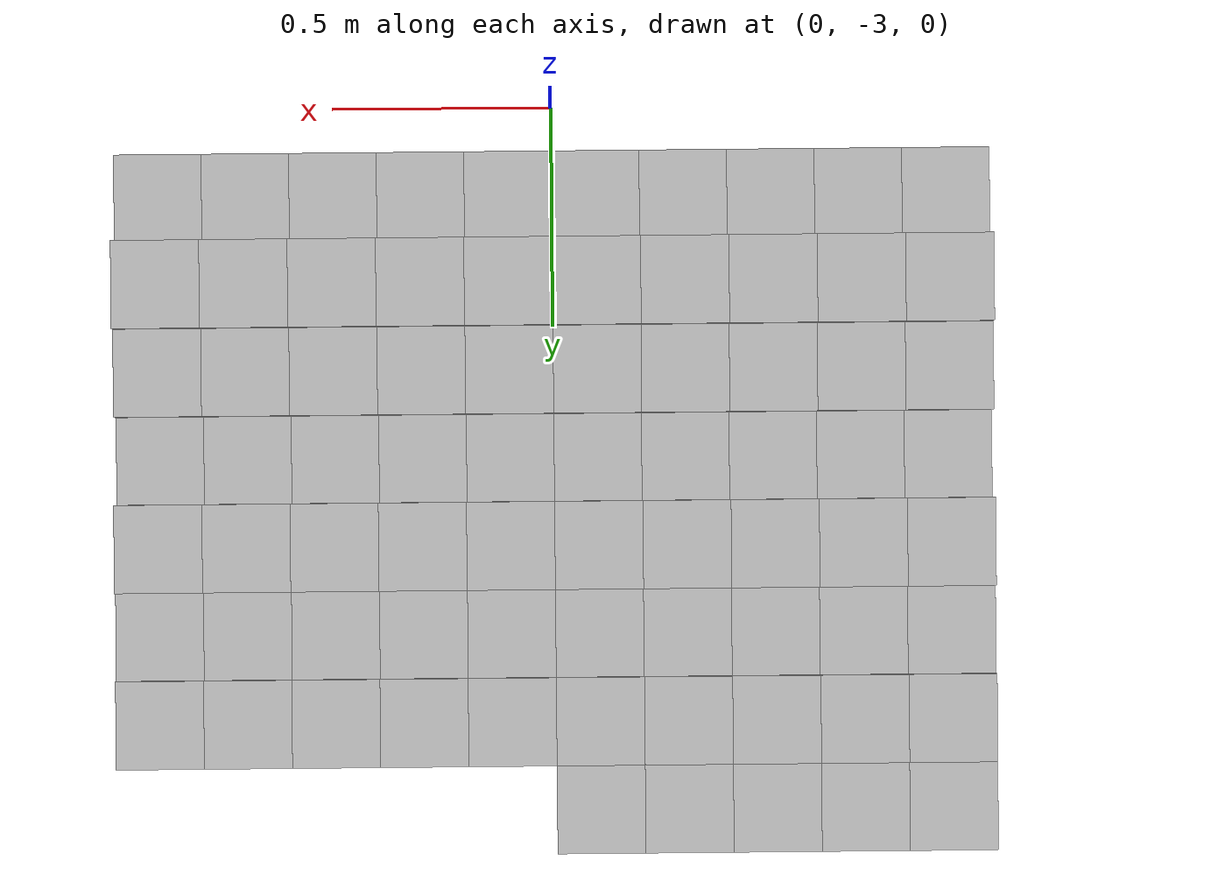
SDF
<sdf version="1.6">
 <model name="Terrain">
  <static>true</static>
  <link name="box_7_0">
   <pose>-0.9 -1.4 0.0434857644418 0 0 0</pose>
   <inertial>
    <mass>1.0</mass>
    <inertia><ixx>0.0</ixx><ixy>0.0</ixy><ixz>0.0</ixz><iyy>0.0</iyy><iyz>0.0</iyz><izz>0.0</izz></inertia>
   </inertial>
   <collision name="collision"><geometry><box><size>0.2 0.2 0.0869715288836</size></box></geometry></collision>
   <visual name="visual"><geometry><box><size>0.2 0.2 0.0869715288836</size></box></geometry></visual>
  </link>
  <link name="box_7_1">
   <pose>-0.7 -1.4 0.0434857644418 0 0 0</pose>
   <inertial>
    <mass>1.0</mass>
    <inertia><ixx>0.0</ixx><ixy>0.0</ixy><ixz>0.0</ixz><iyy>0.0</iyy><iyz>0.0</iyz><izz>0.0</izz></inertia>
   </inertial>
   <collision name="collision"><geometry><box><size>0.2 0.2 0.0869715288836</size></box></geometry></collision>
   <visual name="visual"><geometry><box><size>0.2 0.2 0.0869715288836</size></box></geometry></visual>
  </link>
  <link name="box_7_2">
   <pose>-0.5 -1.4 0.0434857644418 0 0 0</pose>
   <inertial>
    <mass>1.0</mass>
    <inertia><ixx>0.0</ixx><ixy>0.0</ixy><ixz>0.0</ixz><iyy>0.0</iyy><iyz>0.0</iyz><izz>0.0</izz></inertia>
   </inertial>
   <collision name="collision"><geometry><box><size>0.2 0.2 0.0869715288836</size></box></geometry></collision>
   <visual name="visual"><geometry><box><size>0.2 0.2 0.0869715288836</size></box></geometry></visual>
  </link>
  <link name="box_7_3">
   <pose>-0.3 -1.4 0.0434857644418 0 0 0</pose>
   <inertial>
    <mass>1.0</mass>
    <inertia><ixx>0.0</ixx><ixy>0.0</ixy><ixz>0.0</ixz><iyy>0.0</iyy><iyz>0.0</iyz><izz>0.0</izz></inertia>
   </inertial>
   <collision name="collision"><geometry><box><size>0.2 0.2 0.0869715288836</size></box></geometry></collision>
   <visual name="visual"><geometry><box><size>0.2 0.2 0.0869715288836</size></box></geometry></visual>
  </link>
  <link name="box_7_4">
   <pose>-0.1 -1.4 0.0434857644418 0 0 0</pose>
   <inertial>
    <mass>1.0</mass>
    <inertia><ixx>0.0</ixx><ixy>0.0</ixy><ixz>0.0</ixz><iyy>0.0</iyy><iyz>0.0</iyz><izz>0.0</izz></inertia>
   </inertial>
   <collision name="collision"><geometry><box><size>0.2 0.2 0.0869715288836</size></box></geometry></collision>
   <visual name="visual"><geometry><box><size>0.2 0.2 0.0869715288836</size></box></geometry></visual>
  </link>
  <link name="box_8_0">
   <pose>-0.9 -1.6 0.0460421449949 0 0 0</pose>
   <inertial>
    <mass>1.0</mass>
    <inertia><ixx>0.0</ixx><ixy>0.0</ixy><ixz>0.0</ixz><iyy>0.0</iyy><iyz>0.0</iyz><izz>0.0</izz></inertia>
   </inertial>
   <collision name="collision"><geometry><box><size>0.2 0.2 0.0920842899899</size></box></geometry></collision>
   <visual name="visual"><geometry><box><size>0.2 0.2 0.0920842899899</size></box></geometry></visual>
  </link>
  <link name="box_8_1">
   <pose>-0.7 -1.6 0.0460421449949 0 0 0</pose>
   <inertial>
    <mass>1.0</mass>
    <inertia><ixx>0.0</ixx><ixy>0.0</ixy><ixz>0.0</ixz><iyy>0.0</iyy><iyz>0.0</iyz><izz>0.0</izz></inertia>
   </inertial>
   <collision name="collision"><geometry><box><size>0.2 0.2 0.0920842899899</size></box></geometry></collision>
   <visual name="visual"><geometry><box><size>0.2 0.2 0.0920842899899</size></box></geometry></visual>
  </link>
  <link name="box_8_2">
   <pose>-0.5 -1.6 0.0460421449949 0 0 0</pose>
   <inertial>
    <mass>1.0</mass>
    <inertia><ixx>0.0</ixx><ixy>0.0</ixy><ixz>0.0</ixz><iyy>0.0</iyy><iyz>0.0</iyz><izz>0.0</izz></inertia>
   </inertial>
   <collision name="collision"><geometry><box><size>0.2 0.2 0.0920842899899</size></box></geometry></collision>
   <visual name="visual"><geometry><box><size>0.2 0.2 0.0920842899899</size></box></geometry></visual>
  </link>
  <link name="box_8_3">
   <pose>-0.3 -1.6 0.0460421449949 0 0 0</pose>
   <inertial>
    <mass>1.0</mass>
    <inertia><ixx>0.0</ixx><ixy>0.0</ixy><ixz>0.0</ixz><iyy>0.0</iyy><iyz>0.0</iyz><izz>0.0</izz></inertia>
   </inertial>
   <collision name="collision"><geometry><box><size>0.2 0.2 0.0920842899899</size></box></geometry></collision>
   <visual name="visual"><geometry><box><size>0.2 0.2 0.0920842899899</size></box></geometry></visual>
  </link>
  <link name="box_8_4">
   <pose>-0.1 -1.6 0.0460421449949 0 0 0</pose>
   <inertial>
    <mass>1.0</mass>
    <inertia><ixx>0.0</ixx><ixy>0.0</ixy><ixz>0.0</ixz><iyy>0.0</iyy><iyz>0.0</iyz><izz>0.0</izz></inertia>
   </inertial>
   <collision name="collision"><geometry><box><size>0.2 0.2 0.0920842899899</size></box></geometry></collision>
   <visual name="visual"><geometry><box><size>0.2 0.2 0.0920842899899</size></box></geometry></visual>
  </link>
  <link name="box_8_5">
   <pose>0.1 -1.6 0.0460421449949 0 0 0</pose>
   <inertial>
    <mass>1.0</mass>
    <inertia><ixx>0.0</ixx><ixy>0.0</ixy><ixz>0.0</ixz><iyy>0.0</iyy><iyz>0.0</iyz><izz>0.0</izz></inertia>
   </inertial>
   <collision name="collision"><geometry><box><size>0.2 0.2 0.0920842899899</size></box></geometry></collision>
   <visual name="visual"><geometry><box><size>0.2 0.2 0.0920842899899</size></box></geometry></visual>
  </link>
  <link name="box_8_6">
   <pose>0.3 -1.6 0.0460421449949 0 0 0</pose>
   <inertial>
    <mass>1.0</mass>
    <inertia><ixx>0.0</ixx><ixy>0.0</ixy><ixz>0.0</ixz><iyy>0.0</iyy><iyz>0.0</iyz><izz>0.0</izz></inertia>
   </inertial>
   <collision name="collision"><geometry><box><size>0.2 0.2 0.0920842899899</size></box></geometry></collision>
   <visual name="visual"><geometry><box><size>0.2 0.2 0.0920842899899</size></box></geometry></visual>
  </link>
  <link name="box_8_7">
   <pose>0.5 -1.6 0.0460421449949 0 0 0</pose>
   <inertial>
    <mass>1.0</mass>
    <inertia><ixx>0.0</ixx><ixy>0.0</ixy><ixz>0.0</ixz><iyy>0.0</iyy><iyz>0.0</iyz><izz>0.0</izz></inertia>
   </inertial>
   <collision name="collision"><geometry><box><size>0.2 0.2 0.0920842899899</size></box></geometry></collision>
   <visual name="visual"><geometry><box><size>0.2 0.2 0.0920842899899</size></box></geometry></visual>
  </link>
  <link name="box_8_8">
   <pose>0.7 -1.6 0.0460421449949 0 0 0</pose>
   <inertial>
    <mass>1.0</mass>
    <inertia><ixx>0.0</ixx><ixy>0.0</ixy><ixz>0.0</ixz><iyy>0.0</iyy><iyz>0.0</iyz><izz>0.0</izz></inertia>
   </inertial>
   <collision name="collision"><geometry><box><size>0.2 0.2 0.0920842899899</size></box></geometry></collision>
   <visual name="visual"><geometry><box><size>0.2 0.2 0.0920842899899</size></box></geometry></visual>
  </link>
  <link name="box_8_9">
   <pose>0.9 -1.6 0.0460421449949 0 0 0</pose>
   <inertial>
    <mass>1.0</mass>
    <inertia><ixx>0.0</ixx><ixy>0.0</ixy><ixz>0.0</ixz><iyy>0.0</iyy><iyz>0.0</iyz><izz>0.0</izz></inertia>
   </inertial>
   <collision name="collision"><geometry><box><size>0.2 0.2 0.0920842899899</size></box></geometry></collision>
   <visual name="visual"><geometry><box><size>0.2 0.2 0.0920842899899</size></box></geometry></visual>
  </link>
  <link name="box_9_0">
   <pose>-0.9 -1.8 0.0365737514158 0 0 0</pose>
   <inertial>
    <mass>1.0</mass>
    <inertia><ixx>0.0</ixx><ixy>0.0</ixy><ixz>0.0</ixz><iyy>0.0</iyy><iyz>0.0</iyz><izz>0.0</izz></inertia>
   </inertial>
   <collision name="collision"><geometry><box><size>0.2 0.2 0.0731475028316</size></box></geometry></collision>
   <visual name="visual"><geometry><box><size>0.2 0.2 0.0731475028316</size></box></geometry></visual>
  </link>
  <link name="box_9_1">
   <pose>-0.7 -1.8 0.0365737514158 0 0 0</pose>
   <inertial>
    <mass>1.0</mass>
    <inertia><ixx>0.0</ixx><ixy>0.0</ixy><ixz>0.0</ixz><iyy>0.0</iyy><iyz>0.0</iyz><izz>0.0</izz></inertia>
   </inertial>
   <collision name="collision"><geometry><box><size>0.2 0.2 0.0731475028316</size></box></geometry></collision>
   <visual name="visual"><geometry><box><size>0.2 0.2 0.0731475028316</size></box></geometry></visual>
  </link>
  <link name="box_9_2">
   <pose>-0.5 -1.8 0.0365737514158 0 0 0</pose>
   <inertial>
    <mass>1.0</mass>
    <inertia><ixx>0.0</ixx><ixy>0.0</ixy><ixz>0.0</ixz><iyy>0.0</iyy><iyz>0.0</iyz><izz>0.0</izz></inertia>
   </inertial>
   <collision name="collision"><geometry><box><size>0.2 0.2 0.0731475028316</size></box></geometry></collision>
   <visual name="visual"><geometry><box><size>0.2 0.2 0.0731475028316</size></box></geometry></visual>
  </link>
  <link name="box_9_3">
   <pose>-0.3 -1.8 0.0365737514158 0 0 0</pose>
   <inertial>
    <mass>1.0</mass>
    <inertia><ixx>0.0</ixx><ixy>0.0</ixy><ixz>0.0</ixz><iyy>0.0</iyy><iyz>0.0</iyz><izz>0.0</izz></inertia>
   </inertial>
   <collision name="collision"><geometry><box><size>0.2 0.2 0.0731475028316</size></box></geometry></collision>
   <visual name="visual"><geometry><box><size>0.2 0.2 0.0731475028316</size></box></geometry></visual>
  </link>
  <link name="box_9_4">
   <pose>-0.1 -1.8 0.0365737514158 0 0 0</pose>
   <inertial>
    <mass>1.0</mass>
    <inertia><ixx>0.0</ixx><ixy>0.0</ixy><ixz>0.0</ixz><iyy>0.0</iyy><iyz>0.0</iyz><izz>0.0</izz></inertia>
   </inertial>
   <collision name="collision"><geometry><box><size>0.2 0.2 0.0731475028316</size></box></geometry></collision>
   <visual name="visual"><geometry><box><size>0.2 0.2 0.0731475028316</size></box></geometry></visual>
  </link>
  <link name="box_9_5">
   <pose>0.1 -1.8 0.0365737514158 0 0 0</pose>
   <inertial>
    <mass>1.0</mass>
    <inertia><ixx>0.0</ixx><ixy>0.0</ixy><ixz>0.0</ixz><iyy>0.0</iyy><iyz>0.0</iyz><izz>0.0</izz></inertia>
   </inertial>
   <collision name="collision"><geometry><box><size>0.2 0.2 0.0731475028316</size></box></geometry></collision>
   <visual name="visual"><geometry><box><size>0.2 0.2 0.0731475028316</size></box></geometry></visual>
  </link>
  <link name="box_9_6">
   <pose>0.3 -1.8 0.0365737514158 0 0 0</pose>
   <inertial>
    <mass>1.0</mass>
    <inertia><ixx>0.0</ixx><ixy>0.0</ixy><ixz>0.0</ixz><iyy>0.0</iyy><iyz>0.0</iyz><izz>0.0</izz></inertia>
   </inertial>
   <collision name="collision"><geometry><box><size>0.2 0.2 0.0731475028316</size></box></geometry></collision>
   <visual name="visual"><geometry><box><size>0.2 0.2 0.0731475028316</size></box></geometry></visual>
  </link>
  <link name="box_9_7">
   <pose>0.5 -1.8 0.0365737514158 0 0 0</pose>
   <inertial>
    <mass>1.0</mass>
    <inertia><ixx>0.0</ixx><ixy>0.0</ixy><ixz>0.0</ixz><iyy>0.0</iyy><iyz>0.0</iyz><izz>0.0</izz></inertia>
   </inertial>
   <collision name="collision"><geometry><box><size>0.2 0.2 0.0731475028316</size></box></geometry></collision>
   <visual name="visual"><geometry><box><size>0.2 0.2 0.0731475028316</size></box></geometry></visual>
  </link>
  <link name="box_9_8">
   <pose>0.7 -1.8 0.0365737514158 0 0 0</pose>
   <inertial>
    <mass>1.0</mass>
    <inertia><ixx>0.0</ixx><ixy>0.0</ixy><ixz>0.0</ixz><iyy>0.0</iyy><iyz>0.0</iyz><izz>0.0</izz></inertia>
   </inertial>
   <collision name="collision"><geometry><box><size>0.2 0.2 0.0731475028316</size></box></geometry></collision>
   <visual name="visual"><geometry><box><size>0.2 0.2 0.0731475028316</size></box></geometry></visual>
  </link>
  <link name="box_9_9">
   <pose>0.9 -1.8 0.0365737514158 0 0 0</pose>
   <inertial>
    <mass>1.0</mass>
    <inertia><ixx>0.0</ixx><ixy>0.0</ixy><ixz>0.0</ixz><iyy>0.0</iyy><iyz>0.0</iyz><izz>0.0</izz></inertia>
   </inertial>
   <collision name="collision"><geometry><box><size>0.2 0.2 0.0731475028316</size></box></geometry></collision>
   <visual name="visual"><geometry><box><size>0.2 0.2 0.0731475028316</size></box></geometry></visual>
  </link>
  <link name="box_10_0">
   <pose>-0.9 -2.0 0.0476696976507 0 0 0</pose>
   <inertial>
    <mass>1.0</mass>
    <inertia><ixx>0.0</ixx><ixy>0.0</ixy><ixz>0.0</ixz><iyy>0.0</iyy><iyz>0.0</iyz><izz>0.0</izz></inertia>
   </inertial>
   <collision name="collision"><geometry><box><size>0.2 0.2 0.0953393953015</size></box></geometry></collision>
   <visual name="visual"><geometry><box><size>0.2 0.2 0.0953393953015</size></box></geometry></visual>
  </link>
  <link name="box_10_1">
   <pose>-0.7 -2.0 0.0476696976507 0 0 0</pose>
   <inertial>
    <mass>1.0</mass>
    <inertia><ixx>0.0</ixx><ixy>0.0</ixy><ixz>0.0</ixz><iyy>0.0</iyy><iyz>0.0</iyz><izz>0.0</izz></inertia>
   </inertial>
   <collision name="collision"><geometry><box><size>0.2 0.2 0.0953393953015</size></box></geometry></collision>
   <visual name="visual"><geometry><box><size>0.2 0.2 0.0953393953015</size></box></geometry></visual>
  </link>
  <link name="box_10_2">
   <pose>-0.5 -2.0 0.0476696976507 0 0 0</pose>
   <inertial>
    <mass>1.0</mass>
    <inertia><ixx>0.0</ixx><ixy>0.0</ixy><ixz>0.0</ixz><iyy>0.0</iyy><iyz>0.0</iyz><izz>0.0</izz></inertia>
   </inertial>
   <collision name="collision"><geometry><box><size>0.2 0.2 0.0953393953015</size></box></geometry></collision>
   <visual name="visual"><geometry><box><size>0.2 0.2 0.0953393953015</size></box></geometry></visual>
  </link>
  <link name="box_10_3">
   <pose>-0.3 -2.0 0.0476696976507 0 0 0</pose>
   <inertial>
    <mass>1.0</mass>
    <inertia><ixx>0.0</ixx><ixy>0.0</ixy><ixz>0.0</ixz><iyy>0.0</iyy><iyz>0.0</iyz><izz>0.0</izz></inertia>
   </inertial>
   <collision name="collision"><geometry><box><size>0.2 0.2 0.0953393953015</size></box></geometry></collision>
   <visual name="visual"><geometry><box><size>0.2 0.2 0.0953393953015</size></box></geometry></visual>
  </link>
  <link name="box_10_4">
   <pose>-0.1 -2.0 0.0476696976507 0 0 0</pose>
   <inertial>
    <mass>1.0</mass>
    <inertia><ixx>0.0</ixx><ixy>0.0</ixy><ixz>0.0</ixz><iyy>0.0</iyy><iyz>0.0</iyz><izz>0.0</izz></inertia>
   </inertial>
   <collision name="collision"><geometry><box><size>0.2 0.2 0.0953393953015</size></box></geometry></collision>
   <visual name="visual"><geometry><box><size>0.2 0.2 0.0953393953015</size></box></geometry></visual>
  </link>
  <link name="box_10_5">
   <pose>0.1 -2.0 0.0476696976507 0 0 0</pose>
   <inertial>
    <mass>1.0</mass>
    <inertia><ixx>0.0</ixx><ixy>0.0</ixy><ixz>0.0</ixz><iyy>0.0</iyy><iyz>0.0</iyz><izz>0.0</izz></inertia>
   </inertial>
   <collision name="collision"><geometry><box><size>0.2 0.2 0.0953393953015</size></box></geometry></collision>
   <visual name="visual"><geometry><box><size>0.2 0.2 0.0953393953015</size></box></geometry></visual>
  </link>
  <link name="box_10_6">
   <pose>0.3 -2.0 0.0476696976507 0 0 0</pose>
   <inertial>
    <mass>1.0</mass>
    <inertia><ixx>0.0</ixx><ixy>0.0</ixy><ixz>0.0</ixz><iyy>0.0</iyy><iyz>0.0</iyz><izz>0.0</izz></inertia>
   </inertial>
   <collision name="collision"><geometry><box><size>0.2 0.2 0.0953393953015</size></box></geometry></collision>
   <visual name="visual"><geometry><box><size>0.2 0.2 0.0953393953015</size></box></geometry></visual>
  </link>
  <link name="box_10_7">
   <pose>0.5 -2.0 0.0476696976507 0 0 0</pose>
   <inertial>
    <mass>1.0</mass>
    <inertia><ixx>0.0</ixx><ixy>0.0</ixy><ixz>0.0</ixz><iyy>0.0</iyy><iyz>0.0</iyz><izz>0.0</izz></inertia>
   </inertial>
   <collision name="collision"><geometry><box><size>0.2 0.2 0.0953393953015</size></box></geometry></collision>
   <visual name="visual"><geometry><box><size>0.2 0.2 0.0953393953015</size></box></geometry></visual>
  </link>
  <link name="box_10_8">
   <pose>0.7 -2.0 0.0476696976507 0 0 0</pose>
   <inertial>
    <mass>1.0</mass>
    <inertia><ixx>0.0</ixx><ixy>0.0</ixy><ixz>0.0</ixz><iyy>0.0</iyy><iyz>0.0</iyz><izz>0.0</izz></inertia>
   </inertial>
   <collision name="collision"><geometry><box><size>0.2 0.2 0.0953393953015</size></box></geometry></collision>
   <visual name="visual"><geometry><box><size>0.2 0.2 0.0953393953015</size></box></geometry></visual>
  </link>
  <link name="box_10_9">
   <pose>0.9 -2.0 0.0476696976507 0 0 0</pose>
   <inertial>
    <mass>1.0</mass>
    <inertia><ixx>0.0</ixx><ixy>0.0</ixy><ixz>0.0</ixz><iyy>0.0</iyy><iyz>0.0</iyz><izz>0.0</izz></inertia>
   </inertial>
   <collision name="collision"><geometry><box><size>0.2 0.2 0.0953393953015</size></box></geometry></collision>
   <visual name="visual"><geometry><box><size>0.2 0.2 0.0953393953015</size></box></geometry></visual>
  </link>
  <link name="box_11_0">
   <pose>-0.9 -2.2 0.0134840119903 0 0 0</pose>
   <inertial>
    <mass>1.0</mass>
    <inertia><ixx>0.0</ixx><ixy>0.0</ixy><ixz>0.0</ixz><iyy>0.0</iyy><iyz>0.0</iyz><izz>0.0</izz></inertia>
   </inertial>
   <collision name="collision"><geometry><box><size>0.2 0.2 0.0269680239807</size></box></geometry></collision>
   <visual name="visual"><geometry><box><size>0.2 0.2 0.0269680239807</size></box></geometry></visual>
  </link>
  <link name="box_11_1">
   <pose>-0.7 -2.2 0.0134840119903 0 0 0</pose>
   <inertial>
    <mass>1.0</mass>
    <inertia><ixx>0.0</ixx><ixy>0.0</ixy><ixz>0.0</ixz><iyy>0.0</iyy><iyz>0.0</iyz><izz>0.0</izz></inertia>
   </inertial>
   <collision name="collision"><geometry><box><size>0.2 0.2 0.0269680239807</size></box></geometry></collision>
   <visual name="visual"><geometry><box><size>0.2 0.2 0.0269680239807</size></box></geometry></visual>
  </link>
  <link name="box_11_2">
   <pose>-0.5 -2.2 0.0134840119903 0 0 0</pose>
   <inertial>
    <mass>1.0</mass>
    <inertia><ixx>0.0</ixx><ixy>0.0</ixy><ixz>0.0</ixz><iyy>0.0</iyy><iyz>0.0</iyz><izz>0.0</izz></inertia>
   </inertial>
   <collision name="collision"><geometry><box><size>0.2 0.2 0.0269680239807</size></box></geometry></collision>
   <visual name="visual"><geometry><box><size>0.2 0.2 0.0269680239807</size></box></geometry></visual>
  </link>
  <link name="box_11_3">
   <pose>-0.3 -2.2 0.0134840119903 0 0 0</pose>
   <inertial>
    <mass>1.0</mass>
    <inertia><ixx>0.0</ixx><ixy>0.0</ixy><ixz>0.0</ixz><iyy>0.0</iyy><iyz>0.0</iyz><izz>0.0</izz></inertia>
   </inertial>
   <collision name="collision"><geometry><box><size>0.2 0.2 0.0269680239807</size></box></geometry></collision>
   <visual name="visual"><geometry><box><size>0.2 0.2 0.0269680239807</size></box></geometry></visual>
  </link>
  <link name="box_11_4">
   <pose>-0.1 -2.2 0.0134840119903 0 0 0</pose>
   <inertial>
    <mass>1.0</mass>
    <inertia><ixx>0.0</ixx><ixy>0.0</ixy><ixz>0.0</ixz><iyy>0.0</iyy><iyz>0.0</iyz><izz>0.0</izz></inertia>
   </inertial>
   <collision name="collision"><geometry><box><size>0.2 0.2 0.0269680239807</size></box></geometry></collision>
   <visual name="visual"><geometry><box><size>0.2 0.2 0.0269680239807</size></box></geometry></visual>
  </link>
  <link name="box_11_5">
   <pose>0.1 -2.2 0.0134840119903 0 0 0</pose>
   <inertial>
    <mass>1.0</mass>
    <inertia><ixx>0.0</ixx><ixy>0.0</ixy><ixz>0.0</ixz><iyy>0.0</iyy><iyz>0.0</iyz><izz>0.0</izz></inertia>
   </inertial>
   <collision name="collision"><geometry><box><size>0.2 0.2 0.0269680239807</size></box></geometry></collision>
   <visual name="visual"><geometry><box><size>0.2 0.2 0.0269680239807</size></box></geometry></visual>
  </link>
  <link name="box_11_6">
   <pose>0.3 -2.2 0.0134840119903 0 0 0</pose>
   <inertial>
    <mass>1.0</mass>
    <inertia><ixx>0.0</ixx><ixy>0.0</ixy><ixz>0.0</ixz><iyy>0.0</iyy><iyz>0.0</iyz><izz>0.0</izz></inertia>
   </inertial>
   <collision name="collision"><geometry><box><size>0.2 0.2 0.0269680239807</size></box></geometry></collision>
   <visual name="visual"><geometry><box><size>0.2 0.2 0.0269680239807</size></box></geometry></visual>
  </link>
  <link name="box_11_7">
   <pose>0.5 -2.2 0.0134840119903 0 0 0</pose>
   <inertial>
    <mass>1.0</mass>
    <inertia><ixx>0.0</ixx><ixy>0.0</ixy><ixz>0.0</ixz><iyy>0.0</iyy><iyz>0.0</iyz><izz>0.0</izz></inertia>
   </inertial>
   <collision name="collision"><geometry><box><size>0.2 0.2 0.0269680239807</size></box></geometry></collision>
   <visual name="visual"><geometry><box><size>0.2 0.2 0.0269680239807</size></box></geometry></visual>
  </link>
  <link name="box_11_8">
   <pose>0.7 -2.2 0.0134840119903 0 0 0</pose>
   <inertial>
    <mass>1.0</mass>
    <inertia><ixx>0.0</ixx><ixy>0.0</ixy><ixz>0.0</ixz><iyy>0.0</iyy><iyz>0.0</iyz><izz>0.0</izz></inertia>
   </inertial>
   <collision name="collision"><geometry><box><size>0.2 0.2 0.0269680239807</size></box></geometry></collision>
   <visual name="visual"><geometry><box><size>0.2 0.2 0.0269680239807</size></box></geometry></visual>
  </link>
  <link name="box_11_9">
   <pose>0.9 -2.2 0.0134840119903 0 0 0</pose>
   <inertial>
    <mass>1.0</mass>
    <inertia><ixx>0.0</ixx><ixy>0.0</ixy><ixz>0.0</ixz><iyy>0.0</iyy><iyz>0.0</iyz><izz>0.0</izz></inertia>
   </inertial>
   <collision name="collision"><geometry><box><size>0.2 0.2 0.0269680239807</size></box></geometry></collision>
   <visual name="visual"><geometry><box><size>0.2 0.2 0.0269680239807</size></box></geometry></visual>
  </link>
  <link name="box_12_0">
   <pose>-0.9 -2.4 0.0400465403266 0 0 0</pose>
   <inertial>
    <mass>1.0</mass>
    <inertia><ixx>0.0</ixx><ixy>0.0</ixy><ixz>0.0</ixz><iyy>0.0</iyy><iyz>0.0</iyz><izz>0.0</izz></inertia>
   </inertial>
   <collision name="collision"><geometry><box><size>0.2 0.2 0.0800930806532</size></box></geometry></collision>
   <visual name="visual"><geometry><box><size>0.2 0.2 0.0800930806532</size></box></geometry></visual>
  </link>
  <link name="box_12_1">
   <pose>-0.7 -2.4 0.0400465403266 0 0 0</pose>
   <inertial>
    <mass>1.0</mass>
    <inertia><ixx>0.0</ixx><ixy>0.0</ixy><ixz>0.0</ixz><iyy>0.0</iyy><iyz>0.0</iyz><izz>0.0</izz></inertia>
   </inertial>
   <collision name="collision"><geometry><box><size>0.2 0.2 0.0800930806532</size></box></geometry></collision>
   <visual name="visual"><geometry><box><size>0.2 0.2 0.0800930806532</size></box></geometry></visual>
  </link>
  <link name="box_12_2">
   <pose>-0.5 -2.4 0.0400465403266 0 0 0</pose>
   <inertial>
    <mass>1.0</mass>
    <inertia><ixx>0.0</ixx><ixy>0.0</ixy><ixz>0.0</ixz><iyy>0.0</iyy><iyz>0.0</iyz><izz>0.0</izz></inertia>
   </inertial>
   <collision name="collision"><geometry><box><size>0.2 0.2 0.0800930806532</size></box></geometry></collision>
   <visual name="visual"><geometry><box><size>0.2 0.2 0.0800930806532</size></box></geometry></visual>
  </link>
  <link name="box_12_3">
   <pose>-0.3 -2.4 0.0400465403266 0 0 0</pose>
   <inertial>
    <mass>1.0</mass>
    <inertia><ixx>0.0</ixx><ixy>0.0</ixy><ixz>0.0</ixz><iyy>0.0</iyy><iyz>0.0</iyz><izz>0.0</izz></inertia>
   </inertial>
   <collision name="collision"><geometry><box><size>0.2 0.2 0.0800930806532</size></box></geometry></collision>
   <visual name="visual"><geometry><box><size>0.2 0.2 0.0800930806532</size></box></geometry></visual>
  </link>
  <link name="box_12_4">
   <pose>-0.1 -2.4 0.0400465403266 0 0 0</pose>
   <inertial>
    <mass>1.0</mass>
    <inertia><ixx>0.0</ixx><ixy>0.0</ixy><ixz>0.0</ixz><iyy>0.0</iyy><iyz>0.0</iyz><izz>0.0</izz></inertia>
   </inertial>
   <collision name="collision"><geometry><box><size>0.2 0.2 0.0800930806532</size></box></geometry></collision>
   <visual name="visual"><geometry><box><size>0.2 0.2 0.0800930806532</size></box></geometry></visual>
  </link>
  <link name="box_12_5">
   <pose>0.1 -2.4 0.0400465403266 0 0 0</pose>
   <inertial>
    <mass>1.0</mass>
    <inertia><ixx>0.0</ixx><ixy>0.0</ixy><ixz>0.0</ixz><iyy>0.0</iyy><iyz>0.0</iyz><izz>0.0</izz></inertia>
   </inertial>
   <collision name="collision"><geometry><box><size>0.2 0.2 0.0800930806532</size></box></geometry></collision>
   <visual name="visual"><geometry><box><size>0.2 0.2 0.0800930806532</size></box></geometry></visual>
  </link>
  <link name="box_12_6">
   <pose>0.3 -2.4 0.0400465403266 0 0 0</pose>
   <inertial>
    <mass>1.0</mass>
    <inertia><ixx>0.0</ixx><ixy>0.0</ixy><ixz>0.0</ixz><iyy>0.0</iyy><iyz>0.0</iyz><izz>0.0</izz></inertia>
   </inertial>
   <collision name="collision"><geometry><box><size>0.2 0.2 0.0800930806532</size></box></geometry></collision>
   <visual name="visual"><geometry><box><size>0.2 0.2 0.0800930806532</size></box></geometry></visual>
  </link>
  <link name="box_12_7">
   <pose>0.5 -2.4 0.0400465403266 0 0 0</pose>
   <inertial>
    <mass>1.0</mass>
    <inertia><ixx>0.0</ixx><ixy>0.0</ixy><ixz>0.0</ixz><iyy>0.0</iyy><iyz>0.0</iyz><izz>0.0</izz></inertia>
   </inertial>
   <collision name="collision"><geometry><box><size>0.2 0.2 0.0800930806532</size></box></geometry></collision>
   <visual name="visual"><geometry><box><size>0.2 0.2 0.0800930806532</size></box></geometry></visual>
  </link>
  <link name="box_12_8">
   <pose>0.7 -2.4 0.0400465403266 0 0 0</pose>
   <inertial>
    <mass>1.0</mass>
    <inertia><ixx>0.0</ixx><ixy>0.0</ixy><ixz>0.0</ixz><iyy>0.0</iyy><iyz>0.0</iyz><izz>0.0</izz></inertia>
   </inertial>
   <collision name="collision"><geometry><box><size>0.2 0.2 0.0800930806532</size></box></geometry></collision>
   <visual name="visual"><geometry><box><size>0.2 0.2 0.0800930806532</size></box></geometry></visual>
  </link>
  <link name="box_12_9">
   <pose>0.9 -2.4 0.0400465403266 0 0 0</pose>
   <inertial>
    <mass>1.0</mass>
    <inertia><ixx>0.0</ixx><ixy>0.0</ixy><ixz>0.0</ixz><iyy>0.0</iyy><iyz>0.0</iyz><izz>0.0</izz></inertia>
   </inertial>
   <collision name="collision"><geometry><box><size>0.2 0.2 0.0800930806532</size></box></geometry></collision>
   <visual name="visual"><geometry><box><size>0.2 0.2 0.0800930806532</size></box></geometry></visual>
  </link>
  <link name="box_13_0">
   <pose>-0.9 -2.6 0.0560552978235 0 0 0</pose>
   <inertial>
    <mass>1.0</mass>
    <inertia><ixx>0.0</ixx><ixy>0.0</ixy><ixz>0.0</ixz><iyy>0.0</iyy><iyz>0.0</iyz><izz>0.0</izz></inertia>
   </inertial>
   <collision name="collision"><geometry><box><size>0.2 0.2 0.112110595647</size></box></geometry></collision>
   <visual name="visual"><geometry><box><size>0.2 0.2 0.112110595647</size></box></geometry></visual>
  </link>
  <link name="box_13_1">
   <pose>-0.7 -2.6 0.0560552978235 0 0 0</pose>
   <inertial>
    <mass>1.0</mass>
    <inertia><ixx>0.0</ixx><ixy>0.0</ixy><ixz>0.0</ixz><iyy>0.0</iyy><iyz>0.0</iyz><izz>0.0</izz></inertia>
   </inertial>
   <collision name="collision"><geometry><box><size>0.2 0.2 0.112110595647</size></box></geometry></collision>
   <visual name="visual"><geometry><box><size>0.2 0.2 0.112110595647</size></box></geometry></visual>
  </link>
  <link name="box_13_2">
   <pose>-0.5 -2.6 0.0560552978235 0 0 0</pose>
   <inertial>
    <mass>1.0</mass>
    <inertia><ixx>0.0</ixx><ixy>0.0</ixy><ixz>0.0</ixz><iyy>0.0</iyy><iyz>0.0</iyz><izz>0.0</izz></inertia>
   </inertial>
   <collision name="collision"><geometry><box><size>0.2 0.2 0.112110595647</size></box></geometry></collision>
   <visual name="visual"><geometry><box><size>0.2 0.2 0.112110595647</size></box></geometry></visual>
  </link>
  <link name="box_13_3">
   <pose>-0.3 -2.6 0.0560552978235 0 0 0</pose>
   <inertial>
    <mass>1.0</mass>
    <inertia><ixx>0.0</ixx><ixy>0.0</ixy><ixz>0.0</ixz><iyy>0.0</iyy><iyz>0.0</iyz><izz>0.0</izz></inertia>
   </inertial>
   <collision name="collision"><geometry><box><size>0.2 0.2 0.112110595647</size></box></geometry></collision>
   <visual name="visual"><geometry><box><size>0.2 0.2 0.112110595647</size></box></geometry></visual>
  </link>
  <link name="box_13_4">
   <pose>-0.1 -2.6 0.0560552978235 0 0 0</pose>
   <inertial>
    <mass>1.0</mass>
    <inertia><ixx>0.0</ixx><ixy>0.0</ixy><ixz>0.0</ixz><iyy>0.0</iyy><iyz>0.0</iyz><izz>0.0</izz></inertia>
   </inertial>
   <collision name="collision"><geometry><box><size>0.2 0.2 0.112110595647</size></box></geometry></collision>
   <visual name="visual"><geometry><box><size>0.2 0.2 0.112110595647</size></box></geometry></visual>
  </link>
  <link name="box_13_5">
   <pose>0.1 -2.6 0.0560552978235 0 0 0</pose>
   <inertial>
    <mass>1.0</mass>
    <inertia><ixx>0.0</ixx><ixy>0.0</ixy><ixz>0.0</ixz><iyy>0.0</iyy><iyz>0.0</iyz><izz>0.0</izz></inertia>
   </inertial>
   <collision name="collision"><geometry><box><size>0.2 0.2 0.112110595647</size></box></geometry></collision>
   <visual name="visual"><geometry><box><size>0.2 0.2 0.112110595647</size></box></geometry></visual>
  </link>
  <link name="box_13_6">
   <pose>0.3 -2.6 0.0560552978235 0 0 0</pose>
   <inertial>
    <mass>1.0</mass>
    <inertia><ixx>0.0</ixx><ixy>0.0</ixy><ixz>0.0</ixz><iyy>0.0</iyy><iyz>0.0</iyz><izz>0.0</izz></inertia>
   </inertial>
   <collision name="collision"><geometry><box><size>0.2 0.2 0.112110595647</size></box></geometry></collision>
   <visual name="visual"><geometry><box><size>0.2 0.2 0.112110595647</size></box></geometry></visual>
  </link>
  <link name="box_13_7">
   <pose>0.5 -2.6 0.0560552978235 0 0 0</pose>
   <inertial>
    <mass>1.0</mass>
    <inertia><ixx>0.0</ixx><ixy>0.0</ixy><ixz>0.0</ixz><iyy>0.0</iyy><iyz>0.0</iyz><izz>0.0</izz></inertia>
   </inertial>
   <collision name="collision"><geometry><box><size>0.2 0.2 0.112110595647</size></box></geometry></collision>
   <visual name="visual"><geometry><box><size>0.2 0.2 0.112110595647</size></box></geometry></visual>
  </link>
  <link name="box_13_8">
   <pose>0.7 -2.6 0.0560552978235 0 0 0</pose>
   <inertial>
    <mass>1.0</mass>
    <inertia><ixx>0.0</ixx><ixy>0.0</ixy><ixz>0.0</ixz><iyy>0.0</iyy><iyz>0.0</iyz><izz>0.0</izz></inertia>
   </inertial>
   <collision name="collision"><geometry><box><size>0.2 0.2 0.112110595647</size></box></geometry></collision>
   <visual name="visual"><geometry><box><size>0.2 0.2 0.112110595647</size></box></geometry></visual>
  </link>
  <link name="box_13_9">
   <pose>0.9 -2.6 0.0560552978235 0 0 0</pose>
   <inertial>
    <mass>1.0</mass>
    <inertia><ixx>0.0</ixx><ixy>0.0</ixy><ixz>0.0</ixz><iyy>0.0</iyy><iyz>0.0</iyz><izz>0.0</izz></inertia>
   </inertial>
   <collision name="collision"><geometry><box><size>0.2 0.2 0.112110595647</size></box></geometry></collision>
   <visual name="visual"><geometry><box><size>0.2 0.2 0.112110595647</size></box></geometry></visual>
  </link>
  <link name="box_14_0">
   <pose>-0.9 -2.8 0.0147628806981 0 0 0</pose>
   <inertial>
    <mass>1.0</mass>
    <inertia><ixx>0.0</ixx><ixy>0.0</ixy><ixz>0.0</ixz><iyy>0.0</iyy><iyz>0.0</iyz><izz>0.0</izz></inertia>
   </inertial>
   <collision name="collision"><geometry><box><size>0.2 0.2 0.0295257613961</size></box></geometry></collision>
   <visual name="visual"><geometry><box><size>0.2 0.2 0.0295257613961</size></box></geometry></visual>
  </link>
  <link name="box_14_1">
   <pose>-0.7 -2.8 0.0147628806981 0 0 0</pose>
   <inertial>
    <mass>1.0</mass>
    <inertia><ixx>0.0</ixx><ixy>0.0</ixy><ixz>0.0</ixz><iyy>0.0</iyy><iyz>0.0</iyz><izz>0.0</izz></inertia>
   </inertial>
   <collision name="collision"><geometry><box><size>0.2 0.2 0.0295257613961</size></box></geometry></collision>
   <visual name="visual"><geometry><box><size>0.2 0.2 0.0295257613961</size></box></geometry></visual>
  </link>
  <link name="box_14_2">
   <pose>-0.5 -2.8 0.0147628806981 0 0 0</pose>
   <inertial>
    <mass>1.0</mass>
    <inertia><ixx>0.0</ixx><ixy>0.0</ixy><ixz>0.0</ixz><iyy>0.0</iyy><iyz>0.0</iyz><izz>0.0</izz></inertia>
   </inertial>
   <collision name="collision"><geometry><box><size>0.2 0.2 0.0295257613961</size></box></geometry></collision>
   <visual name="visual"><geometry><box><size>0.2 0.2 0.0295257613961</size></box></geometry></visual>
  </link>
  <link name="box_14_3">
   <pose>-0.3 -2.8 0.0147628806981 0 0 0</pose>
   <inertial>
    <mass>1.0</mass>
    <inertia><ixx>0.0</ixx><ixy>0.0</ixy><ixz>0.0</ixz><iyy>0.0</iyy><iyz>0.0</iyz><izz>0.0</izz></inertia>
   </inertial>
   <collision name="collision"><geometry><box><size>0.2 0.2 0.0295257613961</size></box></geometry></collision>
   <visual name="visual"><geometry><box><size>0.2 0.2 0.0295257613961</size></box></geometry></visual>
  </link>
  <link name="box_14_4">
   <pose>-0.1 -2.8 0.0147628806981 0 0 0</pose>
   <inertial>
    <mass>1.0</mass>
    <inertia><ixx>0.0</ixx><ixy>0.0</ixy><ixz>0.0</ixz><iyy>0.0</iyy><iyz>0.0</iyz><izz>0.0</izz></inertia>
   </inertial>
   <collision name="collision"><geometry><box><size>0.2 0.2 0.0295257613961</size></box></geometry></collision>
   <visual name="visual"><geometry><box><size>0.2 0.2 0.0295257613961</size></box></geometry></visual>
  </link>
  <link name="box_14_5">
   <pose>0.1 -2.8 0.0147628806981 0 0 0</pose>
   <inertial>
    <mass>1.0</mass>
    <inertia><ixx>0.0</ixx><ixy>0.0</ixy><ixz>0.0</ixz><iyy>0.0</iyy><iyz>0.0</iyz><izz>0.0</izz></inertia>
   </inertial>
   <collision name="collision"><geometry><box><size>0.2 0.2 0.0295257613961</size></box></geometry></collision>
   <visual name="visual"><geometry><box><size>0.2 0.2 0.0295257613961</size></box></geometry></visual>
  </link>
  <link name="box_14_6">
   <pose>0.3 -2.8 0.0147628806981 0 0 0</pose>
   <inertial>
    <mass>1.0</mass>
    <inertia><ixx>0.0</ixx><ixy>0.0</ixy><ixz>0.0</ixz><iyy>0.0</iyy><iyz>0.0</iyz><izz>0.0</izz></inertia>
   </inertial>
   <collision name="collision"><geometry><box><size>0.2 0.2 0.0295257613961</size></box></geometry></collision>
   <visual name="visual"><geometry><box><size>0.2 0.2 0.0295257613961</size></box></geometry></visual>
  </link>
  <link name="box_14_7">
   <pose>0.5 -2.8 0.0147628806981 0 0 0</pose>
   <inertial>
    <mass>1.0</mass>
    <inertia><ixx>0.0</ixx><ixy>0.0</ixy><ixz>0.0</ixz><iyy>0.0</iyy><iyz>0.0</iyz><izz>0.0</izz></inertia>
   </inertial>
   <collision name="collision"><geometry><box><size>0.2 0.2 0.0295257613961</size></box></geometry></collision>
   <visual name="visual"><geometry><box><size>0.2 0.2 0.0295257613961</size></box></geometry></visual>
  </link>
  <link name="box_14_8">
   <pose>0.7 -2.8 0.0147628806981 0 0 0</pose>
   <inertial>
    <mass>1.0</mass>
    <inertia><ixx>0.0</ixx><ixy>0.0</ixy><ixz>0.0</ixz><iyy>0.0</iyy><iyz>0.0</iyz><izz>0.0</izz></inertia>
   </inertial>
   <collision name="collision"><geometry><box><size>0.2 0.2 0.0295257613961</size></box></geometry></collision>
   <visual name="visual"><geometry><box><size>0.2 0.2 0.0295257613961</size></box></geometry></visual>
  </link>
  <link name="box_14_9">
   <pose>0.9 -2.8 0.0147628806981 0 0 0</pose>
   <inertial>
    <mass>1.0</mass>
    <inertia><ixx>0.0</ixx><ixy>0.0</ixy><ixz>0.0</ixz><iyy>0.0</iyy><iyz>0.0</iyz><izz>0.0</izz></inertia>
   </inertial>
   <collision name="collision"><geometry><box><size>0.2 0.2 0.0295257613961</size></box></geometry></collision>
   <visual name="visual"><geometry><box><size>0.2 0.2 0.0295257613961</size></box></geometry></visual>
  </link>
 </model>
</sdf>
